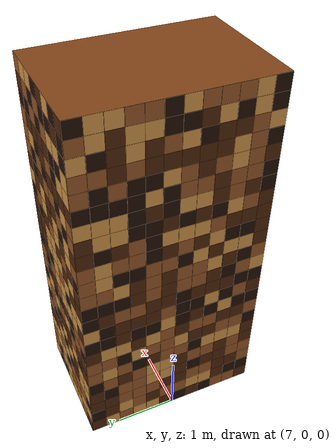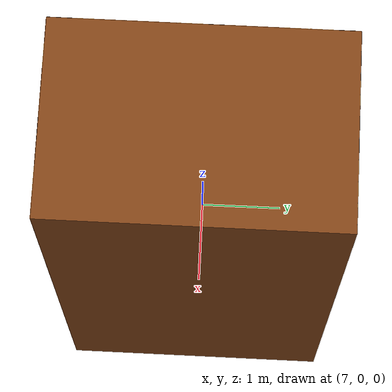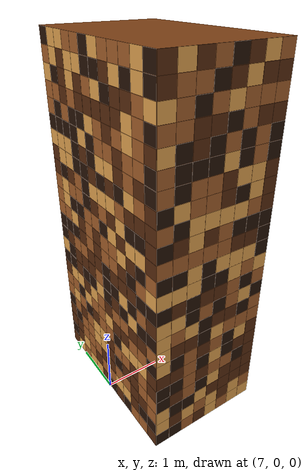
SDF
<sdf version="1.9">
 <world name="monocular_visual_ground_dense">
  <include><name>obstacle_0</name><uri>model://monocular_textured_box</uri><pose>8 0 3 0 0 0</pose></include>
 </world>
</sdf>
